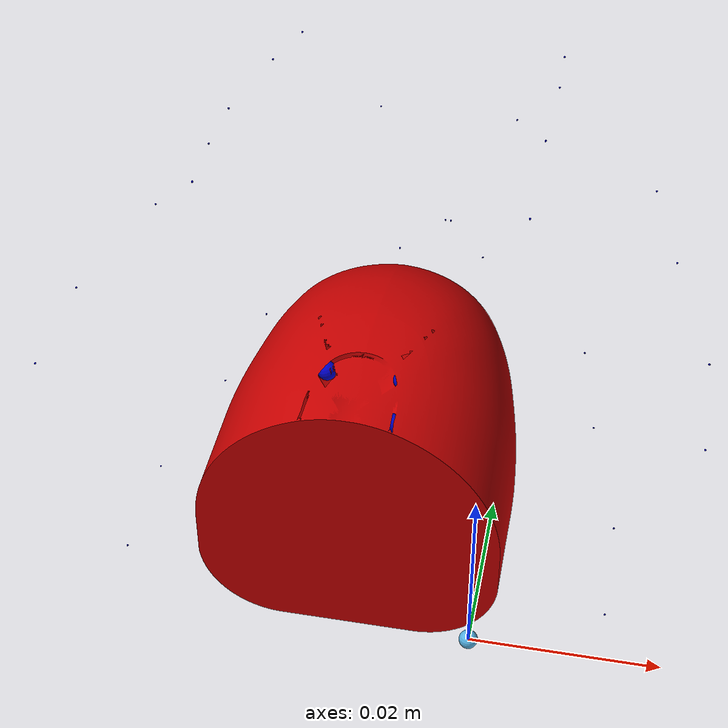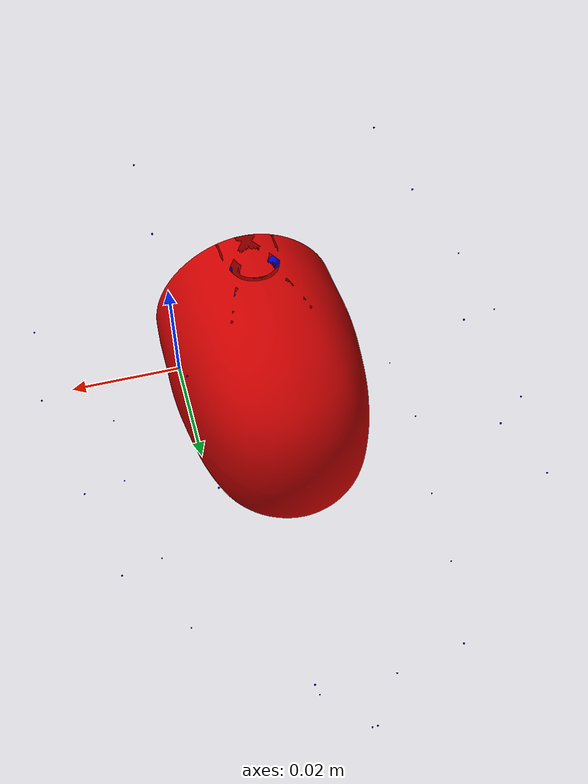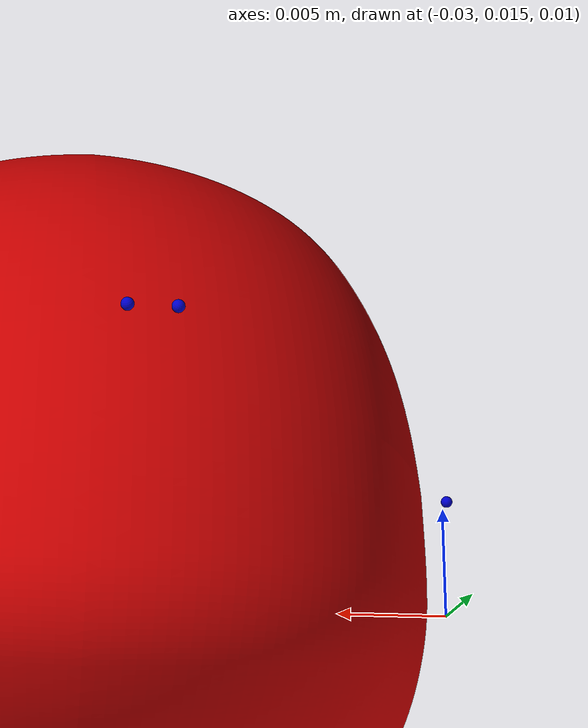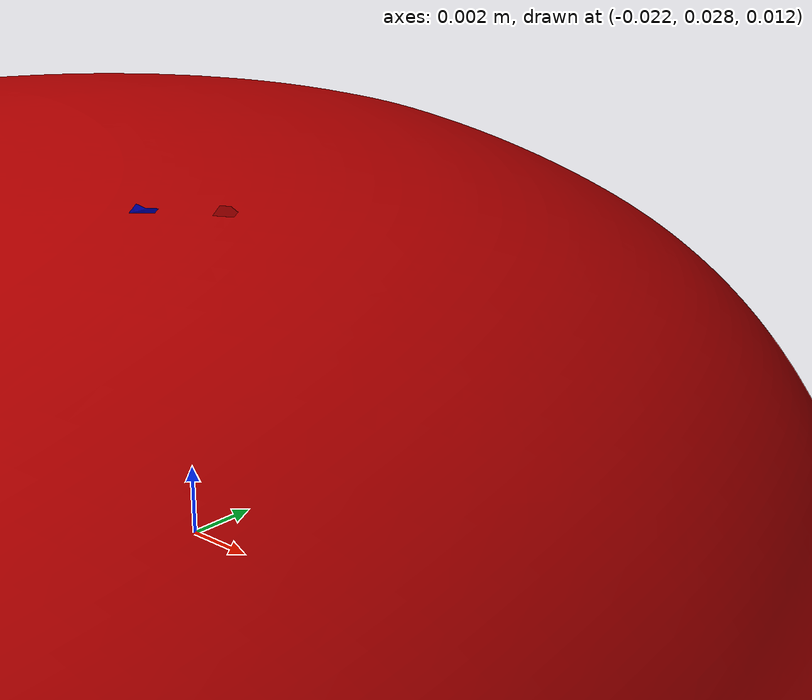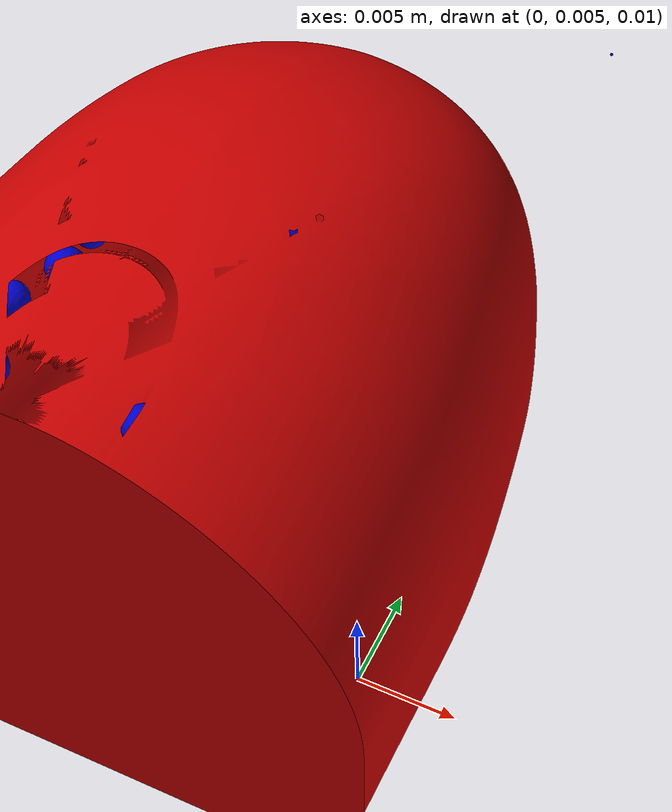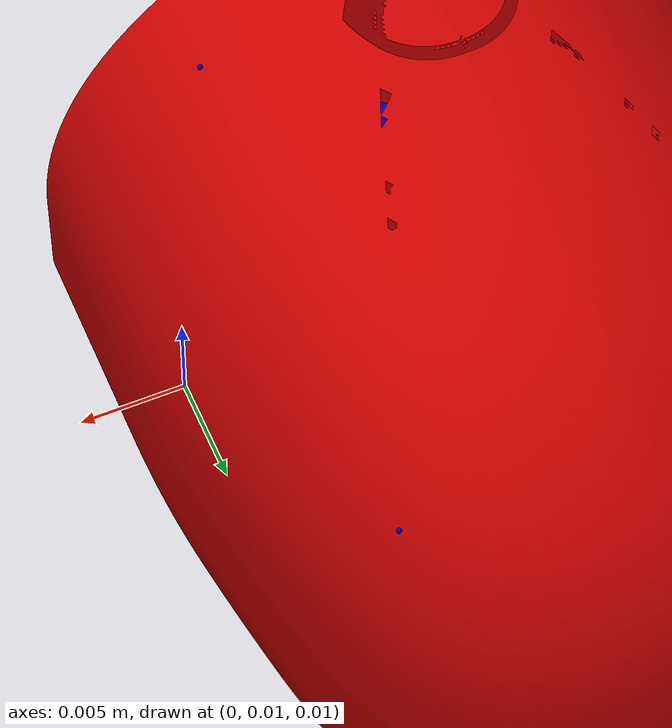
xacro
<?xml version="1.0"?>
<robot name="allegro_fingertip_curved" xmlns:xacro="http://www.ros.org/wiki/xacro">

  <!-- Import XELA Data -->
  <xacro:include filename="$(find xela_models)/urdf/xela.xacro" />

  <!-- Used for fixing robot to Gazebo 'base_link' -->
  <link name="world" />

  <!-- Base Link -->
  <joint name="fixed" type="fixed">
    <parent link="world" />
    <child link="base_link" />
  </joint>

  <link name="base_link">
    <visual>
      <geometry>
        <sphere radius="0.001"/>
      </geometry>
      <origin xyz="0.0 0.0 0.0" rpy="0 0 0"/>
    </visual>
    <collision>
      <geometry>
        <sphere radius="0.001"/>
      </geometry>
    </collision>
  </link>

  <xacro:sensoraftc sequence="1" col="red" parent="base_link" />

</robot>

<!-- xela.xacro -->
<robot xmlns:xacro="http://www.ros.org/wiki/xacro" name="xela">

  <!-- Rviz colors -->
  <material name="black">
    <color rgba="0.0 0.0 0.0 1.0"/>
  </material>

  <material name="blue">
    <color rgba="0.0 0.0 0.8 1.0"/>
  </material>

  <material name="green">
    <color rgba="0.0 0.8 0.0 1.0"/>
  </material>

  <material name="grey">
    <color rgba="0.2 0.2 0.2 1.0"/>
  </material>

  <material name="orange">
    <color rgba="${255/255} ${108/255} ${10/255} 1.0"/>
  </material>

  <material name="brown">
    <color rgba="${222/255} ${207/255} ${195/255} 1.0"/>
  </material>

  <material name="red">
    <color rgba="0.8 0.0 0.0 1.0"/>
  </material>

  <material name="white">
    <color rgba="1.0 1.0 1.0 1.0"/>
  </material>

  <!-- Taxels -->
  <xacro:macro name="taxel" params="sequence parent x:=0.0 y:=0.0 z:=0.0 rx:=0.0 ry:=0.0 rz:=0.0 col:='blue' zmod:=0.0">
    <link name="${sequence}_taxel_base_link">
      <visual>
        <geometry>
          <sphere radius="0.001"/>
        </geometry>
        <origin xyz="0.0 0.0 0.0" rpy="0 0 0"/>
        <material name="${col}"/>
      </visual>
      <collision>
        <geometry>
          <sphere radius="0.001"/>
        </geometry>
      </collision>
    </link>

    <link name="${sequence}_base2x">
      <visual>
        <geometry>
          <sphere radius="0.0001"/>
        </geometry>
        <origin xyz="${x} ${y} ${z}" rpy="0 0 0"/>
        <material name="${col}"/>
      </visual>
      <collision>
        <geometry>
          <sphere radius="0.0001"/>
        </geometry>
      </collision>
    </link>

    <link name="${sequence}_x2y">
      <visual>
        <geometry>
          <sphere radius="0.0001"/>
        </geometry>
        <origin xyz="0.0 0.0 0.0" rpy="0 0 0"/>
        <material name="${col}"/>
      </visual>
      <collision>
        <geometry>
          <sphere radius="0.0001"/>
        </geometry>
      </collision>
    </link>

    <joint name="${sequence}_joint_x" type="prismatic">
      <origin xyz="${x} ${y} ${z}" rpy="${radians(rx)} ${radians(ry)} ${radians(rz)}"/>
      <parent link="${parent}"/>
      <child link="${sequence}_base2x"/>
      <axis xyz="1 0 0"/>
      <limit effort="100.0" lower="-0.0015" upper="0.0015" velocity="0.5"/>
    </joint>
    <joint name="${sequence}_joint_y" type="prismatic">
      <origin xyz="0.0 0.0 0.0" rpy="0.0 0.0 0.0"/>
      <parent link="${sequence}_base2x"/>
      <child link="${sequence}_x2y"/>
      <axis xyz="0 1 0"/>
      <limit effort="100.0" lower="-0.0015" upper="0.0015" velocity="0.5"/>
    </joint>
    <joint name="${sequence}_joint_z" type="prismatic">
      <origin xyz="0.0 0.0 ${zmod}" rpy="0.0 0.0 0.0"/>
      <parent link="${sequence}_x2y"/>
      <child link="${sequence}_taxel_base_link"/>
      <axis xyz="0 0 1"/>
      <limit effort="100.0" lower="${-0.001-zmod}" upper="0.000" velocity="0.5"/>
    </joint>
  </xacro:macro>

  <!-- Test taxel (shows both max and min Z position). Useful for new sensor development -->
  <xacro:macro name="taxeltest" params="sequence parent x:=0.0 y:=0.0 z:=0.0 rx:=0.0 ry:=0.0 rz:=0.0">
    <xacro:taxel sequence="${sequence}A"  x="${x}" y="${y}" z="${z}" rx="${rx}" ry="${ry}" rz="${rz}" parent="${parent}" />
    <xacro:taxel sequence="${sequence}B"  x="${x}" y="${y}" z="${z}" rx="${rx}" ry="${ry}" rz="${rz}" parent="${parent}" col="red" zmod="-0.001" />
  </xacro:macro>

  <!-- Sensors -->
  <xacro:macro name="sensoraftf" params="sequence parent x:=0.0 y:=0.0 z:=0.0 rx:=0.0 ry:=0.0 rz:=0.0 col:='blue' taxels:=0">
    <joint name="${sequence}_aftf_fixed" type="fixed">
      <origin xyz="${x} ${y} ${z}" rpy="${radians(rx)} ${radians(ry)} ${radians(rz)}"/>
      <parent link="${parent}" />
      <child link="${sequence}_aftf_base_link" />
    </joint>
    <link name="${sequence}_aftf_base_link">
      <collision>
        <origin xyz="0 0 0" rpy="0 0 0" />
        <geometry>
          <mesh filename="package://xela_models/mesh/ft_f_collision.stl"/>
        </geometry>
      </collision>
      <visual>
        <origin xyz="0 0 0" rpy="0 0 0" />
        <geometry>
          <mesh filename="package://xela_models/mesh/ft_f_visual.stl"/>
        </geometry>
        <material name="${col}"/>
      </visual>
    </link>

    <link name="${sequence}_aftf_sensorbase_base_link">
      <visual>
        <geometry>
          <sphere radius="0.001"/>
        </geometry>
        <origin xyz="0.0 0.0 0.0" rpy="0 0 0"/>
        <material name="black"/>
      </visual>
      <collision>
        <geometry>
          <sphere radius="0.001"/>
        </geometry>
      </collision>
    </link>
    <link name="${sequence}_aftf_sensorbase_pos_link">
      <visual>
        <geometry>
          <sphere radius="0.00001"/>
        </geometry>
        <origin xyz="0.0 0.0 0.0" rpy="0 0 0"/>
        <material name="black"/>
      </visual>
      <collision>
        <geometry>
          <sphere radius="0.00001"/>
        </geometry>
      </collision>
    </link>
    <joint name="${sequence}_aftf_sensor_pos_joint" type="prismatic">
      <origin xyz="0.0 0.0140 0.0010" rpy="${radians(-25)} 0.0 0.0"/>
      <parent link="${sequence}_aftf_base_link"/>
      <child link="${sequence}_aftf_sensorbase_pos_link"/>
      <axis xyz="0 0 1"/>
      <limit effort="100.0" lower="0.000" upper="0.000" velocity="0.5"/>
    </joint>
    <joint name="${sequence}_aftf_sensor_joint" type="prismatic">
      <origin xyz="0.0 0.0 0.0" rpy="0.0 0.0 ${radians(-90)}"/>
      <parent link="${sequence}_aftf_sensorbase_pos_link"/>
      <child link="${sequence}_aftf_sensorbase_base_link"/>
      <axis xyz="0 0 1"/>
      <limit effort="100.0" lower="0.000" upper="0.000" velocity="0.5"/>
    </joint>

    <xacro:sensor4x4 sequence="${sequence}_aftf" x="-0.0111665" y="-0.0116665" parent="${sequence}_aftf_sensorbase_base_link" body="0" taxels="${taxels}" />
  </xacro:macro>

  <xacro:macro name="sensoraftc" params="sequence parent x:=0.0 y:=0.0 z:=0.0 rx:=0.0 ry:=0.0 rz:=0.0 col:='blue' taxels:=1">
    <joint name="${sequence}_aftc_fixed" type="fixed">
      <origin xyz="${x-0.013} ${y} ${z}" rpy="${radians(rx)} ${radians(ry)} ${radians(rz)}"/>
      <parent link="${parent}" />
      <child link="${sequence}_aftc_base_link" />
    </joint>
    <link name="${sequence}_aftc_base_link">
      <collision>
        <origin xyz="0 0 0" rpy="0 0 0" />
        <geometry>
          <mesh filename="package://xela_models/mesh/ft_c_collision.stl"/>
        </geometry>
      </collision>
      <visual>
        <origin xyz="0 0 0" rpy="0 0 0" />
        <geometry>
          <mesh filename="package://xela_models/mesh/ft_c_visual.stl"/>
        </geometry>
        <material name="${col}"/>
      </visual>
    </link>
    <xacro:if value="${taxels == 1}">
      <xacro:taxel sequence="${sequence}_aftc_1"  x="0.0101" y="0.0306" z="0.01254" ry="90" rz="30" parent="${sequence}_aftc_base_link" />
      <xacro:taxel sequence="${sequence}_aftc_2"  x="0.0126" y="0.0236" z="0.01254" ry="90" rz="10" parent="${sequence}_aftc_base_link" />
      <xacro:taxel sequence="${sequence}_aftc_3"  x="0.0138" y="0.0173" z="0.01254" ry="90" rz="10" parent="${sequence}_aftc_base_link" />
      <xacro:taxel sequence="${sequence}_aftc_4"  x="0.0143" y="0.0103" z="0.01254" ry="90" parent="${sequence}_aftc_base_link" />
      <xacro:taxel sequence="${sequence}_aftc_5"  x="0.0143" y="0.0038" z="0.01254" ry="90" parent="${sequence}_aftc_base_link" />
      <xacro:taxel sequence="${sequence}_aftc_6"  x="0.0098" y="0.0230" z="0.02000" ry="50" rz="10" parent="${sequence}_aftc_base_link" />
      <xacro:taxel sequence="${sequence}_aftc_7"  x="0.0110" y="0.0167" z="0.02000" ry="50" rz="10" parent="${sequence}_aftc_base_link" />
      <xacro:taxel sequence="${sequence}_aftc_8"  x="0.0115" y="0.0103" z="0.02000" ry="50" parent="${sequence}_aftc_base_link" />
      <xacro:taxel sequence="${sequence}_aftc_9"  x="0.0115" y="0.0038" z="0.02000" ry="50" parent="${sequence}_aftc_base_link" />
      <xacro:taxel sequence="${sequence}_aftc_10" x="0.0037" y="0.0338" z="0.01730" ry="29" rx="-48" parent="${sequence}_aftc_base_link" />
      <xacro:taxel sequence="${sequence}_aftc_11" x="0.0039" y="0.0296" z="0.02155" ry="26" rx="-31" parent="${sequence}_aftc_base_link" />
      <xacro:taxel sequence="${sequence}_aftc_12" x="0.0039" y="0.0230" z="0.02444" ry="22" rx="-10" parent="${sequence}_aftc_base_link" />
      <xacro:taxel sequence="${sequence}_aftc_13" x="0.0039" y="0.0169" z="0.02544" ry="21" rx="-10" parent="${sequence}_aftc_base_link" />
      <xacro:taxel sequence="${sequence}_aftc_14" x="0.0039" y="0.0103" z="0.02574" ry="18" parent="${sequence}_aftc_base_link" />
      <xacro:taxel sequence="${sequence}_aftc_15" x="0.0039" y="0.0038" z="0.02574" ry="18" parent="${sequence}_aftc_base_link" />
      <xacro:taxel sequence="${sequence}_aftc_16" x="-0.0037" y="0.0338" z="0.01730" ry="-29" rx="-48" parent="${sequence}_aftc_base_link" />
      <xacro:taxel sequence="${sequence}_aftc_17" x="-0.0039" y="0.0296" z="0.02155" ry="-26" rx="-31" parent="${sequence}_aftc_base_link" />
      <xacro:taxel sequence="${sequence}_aftc_18" x="-0.0039" y="0.0230" z="0.02444" ry="-22" rx="-10" parent="${sequence}_aftc_base_link" />
      <xacro:taxel sequence="${sequence}_aftc_19" x="-0.0039" y="0.0169" z="0.02544" ry="-21" rx="-10" parent="${sequence}_aftc_base_link" />
      <xacro:taxel sequence="${sequence}_aftc_20" x="-0.0039" y="0.0103" z="0.02574" ry="-18" parent="${sequence}_aftc_base_link" />
      <xacro:taxel sequence="${sequence}_aftc_21" x="-0.0039" y="0.0038" z="0.02574" ry="-18" parent="${sequence}_aftc_base_link" />
      <xacro:taxel sequence="${sequence}_aftc_22" x="-0.0098" y="0.0230" z="0.02000" ry="-50" rz="-10" parent="${sequence}_aftc_base_link" />
      <xacro:taxel sequence="${sequence}_aftc_23" x="-0.0110" y="0.0167" z="0.02000" ry="-50" rz="-10" parent="${sequence}_aftc_base_link" />
      <xacro:taxel sequence="${sequence}_aftc_24" x="-0.0115" y="0.0103" z="0.02000" ry="-50" parent="${sequence}_aftc_base_link" />
      <xacro:taxel sequence="${sequence}_aftc_25" x="-0.0115" y="0.0038" z="0.02000" ry="-50" parent="${sequence}_aftc_base_link" />
      <xacro:taxel sequence="${sequence}_aftc_26" x="-0.0101" y="0.0306" z="0.01254" ry="-90" rz="-30" parent="${sequence}_aftc_base_link" />
      <xacro:taxel sequence="${sequence}_aftc_27" x="-0.0126" y="0.0236" z="0.01254" ry="-90" rz="-10" parent="${sequence}_aftc_base_link" />
      <xacro:taxel sequence="${sequence}_aftc_28" x="-0.0138" y="0.0173" z="0.01254" ry="-90" rz="-10" parent="${sequence}_aftc_base_link" />
      <xacro:taxel sequence="${sequence}_aftc_29" x="-0.0143" y="0.0103" z="0.01254" ry="-90" parent="${sequence}_aftc_base_link" />
      <xacro:taxel sequence="${sequence}_aftc_30" x="-0.0143" y="0.0038" z="0.01254" ry="-90" parent="${sequence}_aftc_base_link" />
    </xacro:if>
  </xacro:macro>
   <xacro:macro name="aftd" params="sequence parent x:=0.0 y:=0.0 z:=0.0 rx:=0.0 ry:=0.0 rz:=0.0 col:='blue'">
    <joint name="${sequence}_aftd_fixed" type="fixed">
      <origin xyz="${x-0.013} ${y} ${z}" rpy="${radians(rx)} ${radians(ry)} ${radians(rz)}"/>
      <parent link="${parent}" />
      <child link="${sequence}_aftd_base_link" />
    </joint>
    <link name="${sequence}_aftd_base_link">
      <collision>
        <origin xyz="0 0 0" rpy="0 0 0" />
        <geometry>
          <mesh filename="package://xela_models/mesh/allegro/ahft_default.STL"/>
        </geometry>
      </collision>
      <visual>
        <origin xyz="0 0 0" rpy="0 0 0" />
        <geometry>
          <mesh filename="package://xela_models/mesh/allegro/ahft_default.STL"/>
        </geometry>
        <material name="${col}"/>
      </visual>
    </link>
  </xacro:macro>
  <xacro:macro name="sensor4x4" params="sequence parent x:=0.0 y:=0.0 z:=0.0 rx:=0.0 ry:=0.0 rz:=0.0 col:='blue' body:=1 taxels:=1">
    <joint name="${sequence}_4x4_fixed" type="fixed">
      <origin xyz="${x} ${y} ${z}" rpy="${radians(rx)} ${radians(ry)} ${radians(rz)}"/>
      <parent link="${parent}" />
      <child link="${sequence}_4x4_base_link" />
    </joint>
    <link name="${sequence}_4x4_base_link">
      <collision>
        <origin xyz="0 0 0" rpy="0 0 0" />
        <geometry>
          <mesh filename="package://xela_models/mesh/4x4.stl"/>
        </geometry>
      </collision>
      <xacro:if value="${body == 1}">
        <visual>
          <origin xyz="0 0 0" rpy="0 0 0" />
          <geometry>
            <mesh filename="package://xela_models/mesh/4x4.stl"/>
          </geometry>
          <material name="${col}"/>
        </visual>
      </xacro:if>
    </link>
    <xacro:if value="${taxels == 1}">
      <xacro:taxel sequence="${sequence}_4x4_1"  x="${1*0.0046666+0.0007}" y="${4*0.00466666+0.00015}" z="0.004" parent="${sequence}_4x4_base_link" />
      <xacro:taxel sequence="${sequence}_4x4_2"  x="${2*0.0046666+0.0007}" y="${4*0.00466666+0.00015}" z="0.004" parent="${sequence}_4x4_base_link" />
      <xacro:taxel sequence="${sequence}_4x4_3"  x="${3*0.0046666+0.0007}" y="${4*0.00466666+0.00015}" z="0.004" parent="${sequence}_4x4_base_link" />
      <xacro:taxel sequence="${sequence}_4x4_4"  x="${4*0.0046666+0.0007}" y="${4*0.00466666+0.00015}" z="0.004" parent="${sequence}_4x4_base_link" />
      <xacro:taxel sequence="${sequence}_4x4_5"  x="${1*0.0046666+0.0007}" y="${3*0.00466666+0.00015}" z="0.004" parent="${sequence}_4x4_base_link" />
      <xacro:taxel sequence="${sequence}_4x4_6"  x="${2*0.0046666+0.0007}" y="${3*0.00466666+0.00015}" z="0.004" parent="${sequence}_4x4_base_link" />
      <xacro:taxel sequence="${sequence}_4x4_7"  x="${3*0.0046666+0.0007}" y="${3*0.00466666+0.00015}" z="0.004" parent="${sequence}_4x4_base_link" />
      <xacro:taxel sequence="${sequence}_4x4_8"  x="${4*0.0046666+0.0007}" y="${3*0.00466666+0.00015}" z="0.004" parent="${sequence}_4x4_base_link" />
      <xacro:taxel sequence="${sequence}_4x4_9"  x="${1*0.0046666+0.0007}" y="${2*0.00466666+0.00015}" z="0.004" parent="${sequence}_4x4_base_link" />
      <xacro:taxel sequence="${sequence}_4x4_10" x="${2*0.0046666+0.0007}" y="${2*0.00466666+0.00015}" z="0.004" parent="${sequence}_4x4_base_link" />
      <xacro:taxel sequence="${sequence}_4x4_11" x="${3*0.0046666+0.0007}" y="${2*0.00466666+0.00015}" z="0.004" parent="${sequence}_4x4_base_link" />
      <xacro:taxel sequence="${sequence}_4x4_12" x="${4*0.0046666+0.0007}" y="${2*0.00466666+0.00015}" z="0.004" parent="${sequence}_4x4_base_link" />
      <xacro:taxel sequence="${sequence}_4x4_13" x="${1*0.0046666+0.0007}" y="${1*0.00466666+0.00015}" z="0.004" parent="${sequence}_4x4_base_link" />
      <xacro:taxel sequence="${sequence}_4x4_14" x="${2*0.0046666+0.0007}" y="${1*0.00466666+0.00015}" z="0.004" parent="${sequence}_4x4_base_link" />
      <xacro:taxel sequence="${sequence}_4x4_15" x="${3*0.0046666+0.0007}" y="${1*0.00466666+0.00015}" z="0.004" parent="${sequence}_4x4_base_link" />
      <xacro:taxel sequence="${sequence}_4x4_16" x="${4*0.0046666+0.0007}" y="${1*0.00466666+0.00015}" z="0.004" parent="${sequence}_4x4_base_link" />
    </xacro:if>
  </xacro:macro>
  <xacro:macro name="sensor1x6" params="sequence parent x:=0.0 y:=0.0 z:=0.0 rx:=0.0 ry:=0.0 rz:=0.0 col:='blue' body:=1 taxels:=1">
    <joint name="${sequence}_1x6_fixed" type="fixed">
      <origin xyz="${x} ${y} ${z}" rpy="${radians(rx)} ${radians(ry)} ${radians(rz)}"/>
      <parent link="${parent}" />
      <child link="${sequence}_1x6_base_link" />
    </joint>
    <link name="${sequence}_1x6_base_link">
      <collision>
        <origin xyz="0 0 0" rpy="0 0 0" />
        <geometry>
          <mesh filename="package://xela_models/mesh/1x6.stl"/>
        </geometry>
      </collision>
      <xacro:if value="${body == 1}">
        <visual>
          <origin xyz="0 0 0" rpy="0 0 0" />
          <geometry>
            <mesh filename="package://xela_models/mesh/1x6.stl"/>
          </geometry>
          <material name="${col}"/>
        </visual>
      </xacro:if>
    </link>
    <xacro:if value="${taxels == 1}">
      <xacro:taxel sequence="${sequence}_1x6_1" x="${1*0.0046666-0.0023}" y="${6*0.00466666-0.0023}" z="0.005" parent="${sequence}_1x6_base_link" />
      <xacro:taxel sequence="${sequence}_1x6_2" x="${1*0.0046666-0.0023}" y="${5*0.00466666-0.0023}" z="0.005" parent="${sequence}_1x6_base_link" />
      <xacro:taxel sequence="${sequence}_1x6_3" x="${1*0.0046666-0.0023}" y="${4*0.00466666-0.0023}" z="0.005" parent="${sequence}_1x6_base_link" />
      <xacro:taxel sequence="${sequence}_1x6_4" x="${1*0.0046666-0.0023}" y="${3*0.00466666-0.0023}" z="0.005" parent="${sequence}_1x6_base_link" />
      <xacro:taxel sequence="${sequence}_1x6_5" x="${1*0.0046666-0.0023}" y="${2*0.00466666-0.0023}" z="0.005" parent="${sequence}_1x6_base_link" />
      <xacro:taxel sequence="${sequence}_1x6_6" x="${1*0.0046666-0.0023}" y="${1*0.00466666-0.0023}" z="0.005" parent="${sequence}_1x6_base_link" />
    </xacro:if>
  </xacro:macro>
  <xacro:macro name="sensor4x6" params="sequence parent x:=0.0 y:=0.0 z:=0.0 rx:=0.0 ry:=0.0 rz:=0.0 col:='blue' body:=1 taxels:=1">
    <joint name="${sequence}_4x6_fixed" type="fixed">
      <origin xyz="${x} ${y} ${z}" rpy="${radians(rx)} ${radians(ry)} ${radians(rz)}"/>
      <parent link="${parent}" />
      <child link="${sequence}_4x6_base_link" />
    </joint>
    <link name="${sequence}_4x6_base_link">
      <collision>
        <origin xyz="0 0 0" rpy="0 0 0" />
        <geometry>
          <mesh filename="package://xela_models/mesh/4x6.stl"/>
        </geometry>
      </collision>
      <xacro:if value="${body == 1}">
        <visual>
          <origin xyz="0 0 0" rpy="0 0 0" />
          <geometry>
            <mesh filename="package://xela_models/mesh/4x6.stl"/>
          </geometry>
          <material name="${col}"/>
        </visual>
      </xacro:if>
    </link>
    <xacro:if value="${taxels == 1}">
      <xacro:taxel sequence="${sequence}_4x6_1"  x="${1*0.00724+0.0030}" y="${4*0.00717-0.002175}" z="0.005" parent="${sequence}_4x6_base_link" />
      <xacro:taxel sequence="${sequence}_4x6_2"  x="${2*0.00724+0.0030}" y="${4*0.00717-0.002175}" z="0.005" parent="${sequence}_4x6_base_link" />
      <xacro:taxel sequence="${sequence}_4x6_3"  x="${3*0.00724+0.0030}" y="${4*0.00717-0.002175}" z="0.005" parent="${sequence}_4x6_base_link" />
      <xacro:taxel sequence="${sequence}_4x6_4"  x="${4*0.00724+0.0030}" y="${4*0.00717-0.002175}" z="0.005" parent="${sequence}_4x6_base_link" />
      <xacro:taxel sequence="${sequence}_4x6_5"  x="${5*0.00724+0.0030}" y="${4*0.00717-0.002175}" z="0.005" parent="${sequence}_4x6_base_link" />
      <xacro:taxel sequence="${sequence}_4x6_6"  x="${6*0.00724+0.0030}" y="${4*0.00717-0.002175}" z="0.005" parent="${sequence}_4x6_base_link" />
      <xacro:taxel sequence="${sequence}_4x6_7"  x="${1*0.00724+0.0030}" y="${3*0.00717-0.002175}" z="0.005" parent="${sequence}_4x6_base_link" />
      <xacro:taxel sequence="${sequence}_4x6_8"  x="${2*0.00724+0.0030}" y="${3*0.00717-0.002175}" z="0.005" parent="${sequence}_4x6_base_link" />
      <xacro:taxel sequence="${sequence}_4x6_9"  x="${3*0.00724+0.0030}" y="${3*0.00717-0.002175}" z="0.005" parent="${sequence}_4x6_base_link" />
      <xacro:taxel sequence="${sequence}_4x6_10" x="${4*0.00724+0.0030}" y="${3*0.00717-0.002175}" z="0.005" parent="${sequence}_4x6_base_link" />
      <xacro:taxel sequence="${sequence}_4x6_11" x="${5*0.00724+0.0030}" y="${3*0.00717-0.002175}" z="0.005" parent="${sequence}_4x6_base_link" />
      <xacro:taxel sequence="${sequence}_4x6_12" x="${6*0.00724+0.0030}" y="${3*0.00717-0.002175}" z="0.005" parent="${sequence}_4x6_base_link" />
      <xacro:taxel sequence="${sequence}_4x6_13" x="${1*0.00724+0.0030}" y="${2*0.00717-0.002175}" z="0.005" parent="${sequence}_4x6_base_link" />
      <xacro:taxel sequence="${sequence}_4x6_14" x="${2*0.00724+0.0030}" y="${2*0.00717-0.002175}" z="0.005" parent="${sequence}_4x6_base_link" />
      <xacro:taxel sequence="${sequence}_4x6_15" x="${3*0.00724+0.0030}" y="${2*0.00717-0.002175}" z="0.005" parent="${sequence}_4x6_base_link" />
      <xacro:taxel sequence="${sequence}_4x6_16" x="${4*0.00724+0.0030}" y="${2*0.00717-0.002175}" z="0.005" parent="${sequence}_4x6_base_link" />
      <xacro:taxel sequence="${sequence}_4x6_17" x="${5*0.00724+0.0030}" y="${2*0.00717-0.002175}" z="0.005" parent="${sequence}_4x6_base_link" />
      <xacro:taxel sequence="${sequence}_4x6_18" x="${6*0.00724+0.0030}" y="${2*0.00717-0.002175}" z="0.005" parent="${sequence}_4x6_base_link" />
      <xacro:taxel sequence="${sequence}_4x6_19" x="${1*0.00724+0.0030}" y="${1*0.00717-0.002175}" z="0.005" parent="${sequence}_4x6_base_link" />
      <xacro:taxel sequence="${sequence}_4x6_20" x="${2*0.00724+0.0030}" y="${1*0.00717-0.002175}" z="0.005" parent="${sequence}_4x6_base_link" />
      <xacro:taxel sequence="${sequence}_4x6_21" x="${3*0.00724+0.0030}" y="${1*0.00717-0.002175}" z="0.005" parent="${sequence}_4x6_base_link" />
      <xacro:taxel sequence="${sequence}_4x6_22" x="${4*0.00724+0.0030}" y="${1*0.00717-0.002175}" z="0.005" parent="${sequence}_4x6_base_link" />
      <xacro:taxel sequence="${sequence}_4x6_23" x="${5*0.00724+0.0030}" y="${1*0.00717-0.002175}" z="0.005" parent="${sequence}_4x6_base_link" />
      <xacro:taxel sequence="${sequence}_4x6_24" x="${6*0.00724+0.0030}" y="${1*0.00717-0.002175}" z="0.005" parent="${sequence}_4x6_base_link" />
    </xacro:if>
  </xacro:macro>

  <!-- Allegro Hands -->
  <xacro:macro name="allegro_hand_right" params="sequence parent x:=0.0 y:=0.0 z:=0.0 rx:=0.0 ry:=0.0 rz:=0.0 covers:=1 phalanges:=1 tips:='flat' palm:=1 taxels:=0">
    <link name="${sequence}_ahr_base_link">
      <visual>
        <geometry>
          <xacro:if value="${palm == 1}">
            <mesh filename="package://xela_models/mesh/allegro/base.stl" />
          </xacro:if>
          <xacro:if value="${palm != 1}">
            <mesh filename="package://xela_models/mesh/allegro/base_ns.stl"/>
          </xacro:if>
        </geometry>
        <origin rpy="0 0 0" xyz="0 0 0 "/>
        <material name="cyan">
          <color rgba="0.0 1.0 1.0 1"/>
        </material>
      </visual>
      <collision>
        <origin rpy="0 0 0" xyz="-0.009300 0 -${0.095/2}"/>
        <geometry>
          <box size="0.0408 0.1130 ${0.095}"/>
        </geometry>
      </collision>
    </link>
    <joint name="${sequence}_ahr_fixed" type="fixed">
        <origin xyz="${x} ${y} ${z}" rpy="${radians(rx)} ${radians(ry)} ${radians(rz)}"/>
        <parent link="${parent}" />
        <child link="${sequence}_ahr_base_link" />
      </joint>
    <xacro:if value="${palm == 1}">
      <xacro:sensor4x6 sequence="${sequence}_ahr_palm_1" col="red" parent="${sequence}_ahr_base_link" x="0.013" y="-0.051" z="-0.0365"  rz="90" rx="90" ry="0.0" taxels="${taxels}" />
      <xacro:sensor4x6 sequence="${sequence}_ahr_palm_2" col="green" parent="${sequence}_ahr_base_link" x="0.013" y="0.0523" z="-0.005"  rz="90" rx="90" ry="180.0" taxels="${taxels}" />
      <xacro:sensor4x6 sequence="${sequence}_ahr_palm_3" col="blue" parent="${sequence}_ahr_base_link" x="0.013" y="-0.051" z="-0.068" rz="90" rx="90" ry="0.0" taxels="${taxels}" />
    </xacro:if>
    <xacro:finger
      sequence=			"${sequence}_hitosashi_finger"
      parent=				"${sequence}_ahr_base_link"
      finger_num=			"0"
      offset_origin_x=	"${0}"
      offset_origin_y=	"${0.0435}"
      offset_origin_z=	"${-0.001542}"
      finger_angle_r=		"-${radians(5.0)}"
      covers=				"${covers}"
      phalanges=				"${phalanges}"
      tip=				"${tips}"
      taxels=     "${taxels}"
    />
    <xacro:finger
      sequence=			"${sequence}_naka_finger"
      parent=				"${sequence}_ahr_base_link"
      finger_num=			"1"
      offset_origin_x=	"${0}"
      offset_origin_y=	"0"
      offset_origin_z=	"${0.0007}"
      finger_angle_r=		"0.0"
      covers=				"${covers}"
      phalanges=				"${phalanges}"
      tip=				"${tips}"
      taxels=     "${taxels}"
    />
    <xacro:finger
      sequence=			"${sequence}_kusuri_finger"
      parent=				"${sequence}_ahr_base_link"
      finger_num=			"2"
      offset_origin_x=	"${0}"
      offset_origin_y=	"-${0.0435}"
      offset_origin_z=	"${-0.001542}"
      finger_angle_r=		"${radians(5.0)}"
      covers=				"${covers}"
      phalanges=				"${phalanges}"
      tip=				"${tips}"
      taxels=     "${taxels}"
    />
    <xacro:thumb_right
      sequence=			"${sequence}_oya_finger"
      parent=				"${sequence}_ahr_base_link"
      finger_num=			"3"
      offset_origin_x=	"-0.0182"
      offset_origin_y=	"0.019333"
      offset_origin_z=	"-0.045987"
      covers=				"${covers}"
      finger_angle_r=		"0"
      finger_angle_p=		"-${radians(95)}"
      finger_angle_y=		"-${radians(90)}"
      phalanges=				"${phalanges}"
      tip=				"${tips}"
      taxels=     "${taxels}"
    />
    </xacro:macro>
    <xacro:macro name="finger" params="sequence parent finger_num offset_origin_x offset_origin_y offset_origin_z finger_angle_r covers:=1 tip:='flat' phalanges:=1 taxels:=0">
      <link name="${sequence}_finger_link_${finger_num*4+0}">
        <visual>
          <geometry>
            <mesh filename="package://xela_models/mesh/allegro/link_0.0_ext.STL" />
          </geometry>
          <material name="grey"/>
        </visual>
        <collision>
          <geometry>
            <box size="${0.0196} ${0.0275} ${0.0164}"/>
          </geometry>
          <origin rpy="0 0 0" xyz="0 0 ${0.0164/2+0.003}"/>
        </collision>
      </link>
      <joint name="${sequence}_finger_joint_${finger_num*4+0}" type="revolute">
        <axis xyz="0 0 1"/>
        <limit effort="0" velocity="0" lower="${-0.57+0.1}" upper="${0.57-0.1}" />
        <parent link="${parent}"/>
        <child link="${sequence}_finger_link_${finger_num*4+0}"/>
        <origin rpy="${finger_angle_r} 0 0" xyz="${offset_origin_x} ${offset_origin_y} ${offset_origin_z}"/>
      </joint>
      <link name="${sequence}_finger_link_${finger_num*4+1}">
        <visual>
          <geometry>
            <xacro:if value="${phalanges == 1}">
              <mesh filename="package://xela_models/mesh/allegro/link_1.1.stl" />
            </xacro:if>
            <xacro:if value="${phalanges != 1}">
              <mesh filename="package://xela_models/mesh/allegro/link_1_ns.stl"/>
            </xacro:if>
          </geometry>
          <material name="black"/>
        </visual>

        <collision>
          <geometry>
            <box size="${0.0196} ${0.0275} ${0.0540}"/>
          </geometry>
          <origin rpy="0 0 0" xyz="0 0 ${0.0540/2}"/>
        </collision>
      </link>
      <xacro:if value="${covers == 1}">
        <link name="${sequence}_finger_link_${finger_num*4+1}_cover">
          <visual>
            <geometry>
              <mesh filename="package://xela_models/mesh/allegro/link_1_cover.stl" />
            </geometry>
            <material name="red"/>
          </visual>
          <collision>
            <geometry>
              <mesh filename="package://xela_models/mesh/allegro/link_1_cover.stl" />
            </geometry>
            <origin rpy="0 0 0" xyz="0 0 ${0.0177/2}"/>
          </collision>
        </link>
        <joint name="${sequence}_finger_link_${finger_num*4+1}_cover_joint" type="fixed">
        <origin xyz="0.0 0.0 0.0" rpy="0.0 0.0 0.0"/>
        <parent link="${sequence}_finger_link_${finger_num*4+1}" />
        <child link="${sequence}_finger_link_${finger_num*4+1}_cover" />
        </joint>
      </xacro:if>
      <xacro:if value="${phalanges == 1}">
        <xacro:sensor4x4 sequence="${sequence}_finger_link_${finger_num*4+1}A" col="red" parent="${sequence}_finger_link_${finger_num*4+1}" ry="-90" rz="180" z="0.033" y="0.012" x="0.0108" body="0" taxels="${taxels}" />
        <xacro:sensor4x4 sequence="${sequence}_finger_link_${finger_num*4+1}B" col="red" parent="${sequence}_finger_link_${finger_num*4+1}" ry="90" z="0.021" y="-0.012" x="0.0108" body="0" taxels="${taxels}" />
      </xacro:if>
      <joint name="${sequence}_finger_joint_${finger_num*4+1}" type="revolute">
        <limit effort="0" velocity="0" lower="${-0.296+0.1}" upper="${1.71-0.1}" />
        <axis xyz="0 1 0"/>
        <parent link="${sequence}_finger_link_${finger_num*4+0}"/>
        <child link="${sequence}_finger_link_${finger_num*4+1}"/>
        <origin xyz="0 0 ${0.0164+0.004}"/> <!-- New height on fingers -->
      </joint>
      <link name="${sequence}_finger_link_${finger_num*4+2}">
        <visual>
          <geometry>
            <xacro:if value="${phalanges == 1}">
              <mesh filename="package://xela_models/mesh/allegro/link_2.1.stl" />
            </xacro:if>
            <xacro:if value="${phalanges != 1}">
              <mesh filename="package://xela_models/mesh/allegro/link_2_ns.stl"/>
            </xacro:if>
          </geometry>
          <material name="black"/>
        </visual>
        <collision>
          <geometry>
            <box size="${0.0196} ${0.0275} ${0.0384}"/>
          </geometry>
          <origin rpy="0 0 0" xyz="0 0 ${0.0384/2}"/>
        </collision>
      </link>
      <xacro:if value="${covers == 1}">
        <link name="${sequence}_finger_link_${finger_num*4+2}_cover">
          <visual>
            <geometry>
              <mesh filename="package://xela_models/mesh/allegro/link_2_cover.stl" />
            </geometry>
            <material name="red"/>
          </visual>
          <collision>
            <geometry>
              <mesh filename="package://xela_models/mesh/allegro/link_2_cover.stl" />
            </geometry>
            <origin rpy="0 0 0" xyz="0 0 ${0.0514/2}"/>
          </collision>
        </link>
        <joint name="${sequence}_finger_link_${finger_num*4+2}_cover_joint" type="fixed">
        <origin xyz="0.0 0.0 0.0" rpy="0.0 0.0 0.0"/>
        <parent link="${sequence}_finger_link_${finger_num*4+2}" />
        <child link="${sequence}_finger_link_${finger_num*4+2}_cover" />
        </joint>
      </xacro:if>
      <xacro:if value="${phalanges == 1}">
        <xacro:sensor4x4 sequence="${sequence}_finger_link_${finger_num*4+2}" col="red" parent="${sequence}_finger_link_${finger_num*4+2}" ry="90" z="0.0445" y="-0.012" x="0.01" body="0" taxels="${taxels}" />
      </xacro:if>
      <joint name="${sequence}_finger_joint_${finger_num*4+2}" type="revolute">
        <axis xyz="0 1 0"/>
        <limit effort="0" velocity="0" lower="${-0.274+0.1}" upper="${1.809-0.1}" />
        <parent link="${sequence}_finger_link_${finger_num*4+1}"/>
        <child link="${sequence}_finger_link_${finger_num*4+2}"/>
        <origin xyz="0 0 ${0.0540}"/>
      </joint>
      <link name="${sequence}_finger_link_${finger_num*4+3}">
        <visual>
          <geometry>
            <mesh filename="package://xela_models/mesh/allegro/link_3.0.STL" />
          </geometry>
          <material name="black"/>
        </visual>
        <collision>
          <geometry>
            <box size="${0.0196} ${0.0275} ${0.0387-0.0120}"/>
          </geometry>
          <origin rpy="0 0 0" xyz="0 0 ${(0.0387-0.0120)/2}"/>
        </collision>
      </link>
      <joint name="${sequence}_finger_joint_${finger_num*4+3}" type="revolute">
        <axis xyz="0 1 0"/>
        <limit effort="0" velocity="0" lower="${-0.327+0.1}" upper="${1.718-0.1}" />
        <parent link="${sequence}_finger_link_${finger_num*4+2}"/>
        <child link="${sequence}_finger_link_${finger_num*4+3}"/>
        <origin xyz="0 0.0002 0.043"/>
      </joint>
    <xacro:if value="${tip == 'flat'}">
      <xacro:sensoraftf sequence="${sequence}_finger_${finger_num}" col="red" parent="${sequence}_finger_link_${finger_num*4+3}" rx="90" rz="90" z="0.016" taxels="${taxels}" />
    </xacro:if>
    <xacro:if value="${tip == 'curved'}">
      <xacro:sensoraftc sequence="${sequence}_finger_${finger_num}" col="red" parent="${sequence}_finger_link_${finger_num*4+3}" rx="90" rz="90" z="0.016" taxels="${taxels}" />
    </xacro:if>
    <xacro:if value="${tip == 'default'}">
      <xacro:aftd sequence="${sequence}_finger_${finger_num}" col="white" parent="${sequence}_finger_link_${finger_num*4+3}" rx="0" rz="0" z="0.027" x="0.013"/>
    </xacro:if>
    </xacro:macro>
    <xacro:macro name="thumb_right" params="sequence parent finger_num offset_origin_x offset_origin_y offset_origin_z finger_angle_r finger_angle_p finger_angle_y covers:=1 phalanges:=1 tip:='flat' taxels:=0">
      <link name="${sequence}_link_${finger_num*4+0}">
        <visual>
          <geometry>
            <mesh filename="package://xela_models/mesh/allegro/link_12.0_right.STL" />
          </geometry>
          <material name="black">
            <color rgba=".2 .2 .2 1"/>
          </material>
        </visual>
        <collision>
          <geometry>
            <box size="${0.0358} ${0.0340} ${0.0455}"/>
          </geometry>
          <origin rpy="0 0 0" xyz="${-0.0358/2+0.0} ${.018/2} ${.029/2}"/>
        </collision>
      </link>
      <joint name="${sequence}_joint_${finger_num*4+0}" type="revolute">
        <axis xyz="-1 0 0"/>
        <limit effort="0" velocity="0" lower="${0.363-0.1}" upper="${1.496-0.1}" />
        <parent link="${parent}"/>
        <child link="${sequence}_link_${finger_num*4+0}"/>
        <origin rpy="${finger_angle_r} ${finger_angle_p} ${finger_angle_y}" xyz="${offset_origin_x} ${offset_origin_y} ${offset_origin_z}"/>
      </joint>
      <link name="${sequence}_link_${finger_num*4+1}">
        <visual>
          <geometry>
            <mesh filename="package://xela_models/mesh/allegro/link_13.0.STL" />
          </geometry>
          <material name="black">
            <color rgba=".2 .2 .2 1"/>
          </material>
        </visual>
        <collision>
          <geometry>
            <box size="${0.0196} ${0.0275} ${0.0177}"/>
          </geometry>
          <origin rpy="0 0 0" xyz="0 0 ${0.0177/2}"/>
        </collision>
      </link>
      <xacro:if value="${covers == 1}">
        <link name="${sequence}_link_${finger_num*4+1}_cover">
          <visual>
            <geometry>
              <mesh filename="package://xela_models/mesh/allegro/thumb_1_cover.stl" />
            </geometry>
            <material name="red"/>
          </visual>
          <collision>
            <geometry>
              <mesh filename="package://xela_models/mesh/allegro/thumb_1_cover.stl" />
            </geometry>
            <origin rpy="0 0 0" xyz="0 0 0"/>
          </collision>
        </link>
        <joint name="${sequence}_link_${finger_num*4+1}_cover_joint" type="fixed">
        <origin xyz="0.0 0.0 0.0" rpy="0.0 0.0 0.0"/>
        <parent link="${sequence}_link_${finger_num*4+2}" />
        <child link="${sequence}_link_${finger_num*4+1}_cover" />
        </joint>
      </xacro:if>
      <joint name="${sequence}_joint_${finger_num*4+1}" type="revolute">
        <axis xyz="0 0 1"/>
        <limit effort="0" velocity="0" lower="${-0.205+0.1}" upper="${1.263-0.1}" />
        <parent link="${sequence}_link_${finger_num*4+0}"/>
        <child link="${sequence}_link_${finger_num*4+1}"/>
        <origin xyz="-0.027 0.005 0.0399"/>
      </joint>
      <link name="${sequence}_link_${finger_num*4+2}">
        <visual>
          <geometry>
            <xacro:if value="${phalanges == 1}">
              <mesh filename="package://xela_models/mesh/allegro/thumb_1.1.stl"/>
            </xacro:if>
            <xacro:if value="${phalanges != 1}">
              <mesh filename="package://xela_models/mesh/allegro/thumb_1.1_ns.stl"/>
            </xacro:if>
          </geometry>
          <material name="black">
          </material>
        </visual>
        <collision>
          <geometry>
            <box size="${0.0196} ${0.0275} ${0.0514}"/>
          </geometry>
          <origin rpy="0 0 0" xyz="0 0 ${0.0514/2}"/>
        </collision>
      </link>
      <xacro:if value="${covers == 1}">
        <link name="${sequence}_link_${finger_num*4+2}_cover">
          <visual>
            <geometry>
              <mesh filename="package://xela_models/mesh/allegro/thumb_2_cover.stl" />
            </geometry>
            <material name="red"/>
          </visual>
          <collision>
            <geometry>
              <mesh filename="package://xela_models/mesh/allegro/thumb_2_cover.stl" />
            </geometry>
            <origin rpy="0 0 0" xyz="0 0 0"/>
          </collision>
        </link>
        <joint name="${sequence}_link_${finger_num*4+2}_cover_joint" type="fixed">
        <origin xyz="0.0 0.0 0.0" rpy="0.0 0.0 0.0"/>
        <parent link="${sequence}_link_${finger_num*4+3}" />
        <child link="${sequence}_link_${finger_num*4+2}_cover" />
        </joint>
      </xacro:if>
      <xacro:if value="${phalanges == 1}">
        <xacro:sensor4x4 sequence="${sequence}_link_${finger_num*4+2}" parent="${sequence}_link_${finger_num*4+2}" ry="90" z="0.023" y="-0.012" x="0.011" body="0" taxels="${taxels}" />
      </xacro:if>
      <joint name="${sequence}_joint_${finger_num*4+2}" type="revolute">
        <axis xyz="0 1 0"/>
        <limit effort="0" velocity="0" lower="${-0.289+0.1}" upper="${1.744-0.1}" />
        <parent link="${sequence}_link_${finger_num*4+1}"/>
        <child link="${sequence}_link_${finger_num*4+2}"/>
        <origin xyz="0 0 ${0.0177}"/>
      </joint>
      <link name="${sequence}_link_${finger_num*4+3}">
        <visual>
          <geometry>
            <xacro:if value="${phalanges == 1}">
              <mesh filename="package://xela_models/mesh/allegro/thumb_2.1.stl"/>
            </xacro:if>
            <xacro:if value="${phalanges != 1}">
              <mesh filename="package://xela_models/mesh/allegro/thumb_1.2_ns.stl"/>
            </xacro:if>
          </geometry>
        <material name="black">
        </material>
        </visual>
        <collision>
          <geometry>
            <box size="${0.0196} ${0.0275} ${0.0543-0.0120}"/>
          </geometry>
          <origin rpy="0 0 0" xyz="0 0 ${(0.0543-0.0120)/2}"/>
        </collision>
      </link>
      <xacro:if value="${phalanges == 1}">
        <xacro:sensor4x4 sequence="${sequence}_link_${finger_num*4+3}" parent="${sequence}_link_${finger_num*4+3}" ry="90" z="0.021" y="-0.012" x="0.011" body="0" taxels="${taxels}" />
      </xacro:if>
    <joint name="${sequence}_joint_${finger_num*4+3}" type="revolute">
      <axis xyz="0 1 0"/>
      <limit effort="0" velocity="0" lower="${-0.262+0.1}" upper="${1.819-0.1}" />
      <parent link="${sequence}_link_${finger_num*4+2}"/>
      <child link="${sequence}_link_${finger_num*4+3}"/>
      <origin xyz="0 0 ${0.0514}"/>
    </joint>
    <xacro:if value="${tip == 'flat'}">
      <xacro:sensoraftf sequence="${sequence}_${finger_num}" col="green" parent="${sequence}_link_${finger_num*4+3}" rx="90" rz="90" z="0.0315" taxels="${taxels}" />
    </xacro:if>
    <xacro:if value="${tip == 'curved'}">
      <xacro:sensoraftc sequence="${sequence}_${finger_num}" col="green" parent="${sequence}_link_${finger_num*4+3}" rx="90" rz="90" z="0.0315" taxels="${taxels}" />
    </xacro:if>
    <xacro:if value="${tip == 'default'}">
      <xacro:aftd sequence="${sequence}_${finger_num}" col="white" parent="${sequence}_link_${finger_num*4+3}" rx="0" rz="0" z="0.042" x="0.013" />
    </xacro:if>
  </xacro:macro>
</robot>
